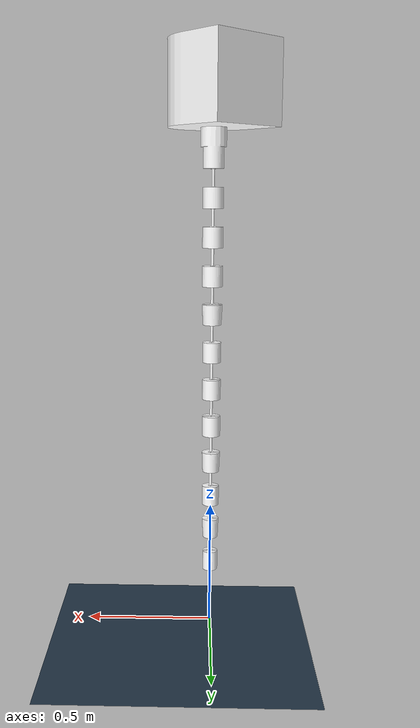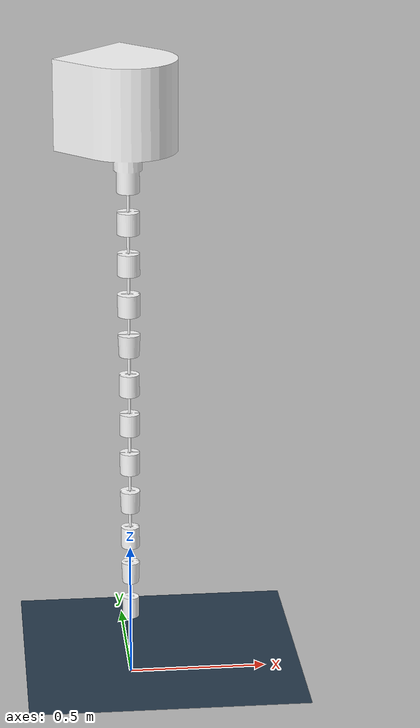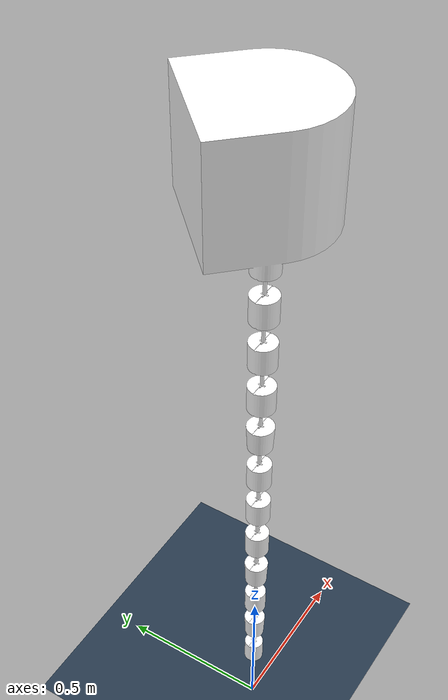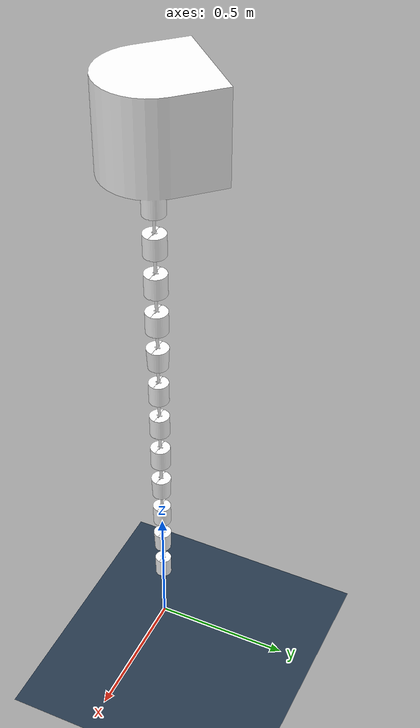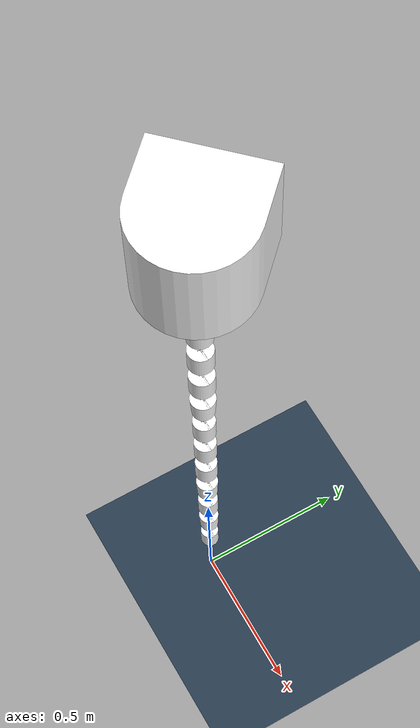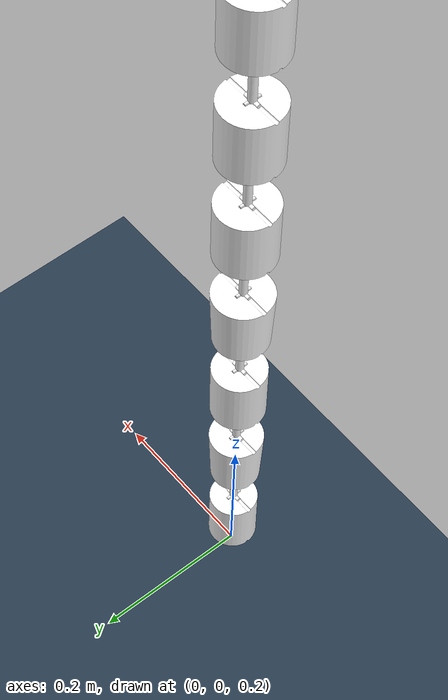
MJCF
<mujoco model="Sup_arm scene">
  <include file="sup_arm.xml"/>

  <statistic center="0.3 0 0.4" extent="0.8" meansize="0.08"/>

  <visual>
    <headlight diffuse="0.6 0.6 0.6" ambient="0.1 0.1 0.1" specular="0 0 0"/>
    <global azimuth="120" elevation="-20"/>
  </visual>

  <asset>
    <texture name="grid" type="2d" builtin="checker" rgb1=".2 .3 .4" rgb2=".1 0.15 0.2" width="512" height="512"
      mark="cross" markrgb=".8 .8 .8"/>
    <material name="grid" texture="grid" texrepeat="1 1" texuniform="true"/>
  </asset>

  <worldbody>
    <light pos="0 0 1.5" directional="true"/>
    <geom name="floor" size="100 100 0.01" type="plane" material="grid"/>
  </worldbody>
</mujoco>

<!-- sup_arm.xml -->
<mujoco model="sup_arm">
  <compiler angle="radian" meshdir="./visual/"/>
  <option gravity="0 0 -9.81" integrator = "implicitfast"/>

  <asset>
    <mesh name="base_link" file="base_link.STL"/>
    <mesh name="seg1_joint1_1" file="seg1_joint1_1.STL"/>
    <mesh name="seg1_joint1_2" file="seg1_joint1_2.STL"/>
    <mesh name="seg1_joint1_3" file="seg1_joint1_3.STL"/>
    <mesh name="seg1_link1" file="seg1_link1.STL"/>
    <mesh name="seg1_joint2_1" file="seg1_joint2_1.STL"/>
    <mesh name="seg1_joint2_2" file="seg1_joint2_2.STL"/>
    <mesh name="seg1_joint2_3" file="seg1_joint2_3.STL"/>
    <mesh name="seg1_link2" file="seg1_link2.STL"/>
    <mesh name="seg1_joint3_1" file="seg1_joint3_1.STL"/>
    <mesh name="seg1_joint3_2" file="seg1_joint3_2.STL"/>
    <mesh name="seg1_joint3_3" file="seg1_joint3_3.STL"/>
    <mesh name="seg1_link3" file="seg1_link3.STL"/>
    <mesh name="seg1_joint4_1" file="seg1_joint4_1.STL"/>
    <mesh name="seg1_joint4_2" file="seg1_joint4_2.STL"/>
    <mesh name="seg1_joint4_3" file="seg1_joint4_3.STL"/>
    <mesh name="seg1_link4" file="seg1_link4.STL"/>
    <mesh name="seg2_joint1_1" file="seg2_joint1_1.STL"/>
    <mesh name="seg2_joint1_2" file="seg2_joint1_2.STL"/>
    <mesh name="seg2_joint1_3" file="seg2_joint1_3.STL"/>
    <mesh name="seg2_link1" file="seg2_link1.STL"/>
    <mesh name="seg2_joint2_1" file="seg2_joint2_1.STL"/>
    <mesh name="seg2_joint2_2" file="seg2_joint2_2.STL"/>
    <mesh name="seg2_joint2_3" file="seg2_joint2_3.STL"/>
    <mesh name="seg2_link2" file="seg2_link2.STL"/>
    <mesh name="seg2_joint3_1" file="seg2_joint3_1.STL"/>
    <mesh name="seg2_joint3_2" file="seg2_joint3_2.STL"/>
    <mesh name="seg2_joint3_3" file="seg2_joint3_3.STL"/>
    <mesh name="seg2_link3" file="seg2_link3.STL"/>
    <mesh name="seg2_joint4_1" file="seg2_joint4_1.STL"/>
    <mesh name="seg2_joint4_2" file="seg2_joint4_2.STL"/>
    <mesh name="seg2_joint4_3" file="seg2_joint4_3.STL"/>
    <mesh name="seg2_link4" file="seg2_link4.STL"/>
    <mesh name="seg3_joint1_1" file="seg3_joint1_1.STL"/>
    <mesh name="seg3_joint1_2" file="seg3_joint1_2.STL"/>
    <mesh name="seg3_joint1_3" file="seg3_joint1_3.STL"/>
    <mesh name="seg3_link1" file="seg3_link1.STL"/>
    <mesh name="seg3_joint2_1" file="seg3_joint2_1.STL"/>
    <mesh name="seg3_joint2_2" file="seg3_joint2_2.STL"/>
    <mesh name="seg3_joint2_3" file="seg3_joint2_3.STL"/>
    <mesh name="seg3_link2" file="seg3_link2.STL"/>
    <mesh name="seg4_joint1_1" file="seg4_joint1_1.STL"/>
    <mesh name="seg4_joint1_2" file="seg4_joint1_2.STL"/>
    <mesh name="seg4_joint1_3" file="seg4_joint1_3.STL"/>
    <mesh name="seg4_link4" file="seg4_link4.STL"/>
  </asset>

  <worldbody>
    <body name="xMatePro3_base" pos = "0 0 2.0" euler = "3.1415 0 0">
      <geom type="mesh" rgba="1 1 1 1" mesh="base_link" contype="0" conaffinity="0"/>
      <body name="seg1_joint1_1" pos="0 0 0.152" quat="0.499998 0.5 0.500002 0.5">
        <inertial pos="2.3799e-08 1.34292e-09 4.6099e-09" quat="0.707107 0 0 0.707107" mass="0.586751" diaginertia="2.21709e-05 1.40956e-05 9.70257e-06"/>
        <joint name="seg1_x1" pos="0 0 0" axis="0 0 1" range="-1.57 1.57"/>
        <geom type="mesh" rgba="1 1 1 1" mesh="seg1_joint1_1" contype="0" conaffinity="0"/>
        <body name="seg1_joint1_2" quat="0.499998 0.5 0.500002 0.5">
          <inertial pos="0.035 0 2.77791e-09" quat="0 0.707107 0 0.707107" mass="0.537451" diaginertia="2.13552e-04 2.13465e-04 6.76142e-06"/>
          <joint name="seg1_y1" pos="0 0 0" axis="0 0 1" range="-1.57 1.57"/>
          <geom type="mesh" rgba="1 1 1 1" mesh="seg1_joint1_2" contype="0" conaffinity="0"/>
          <body name="seg1_joint1_3" pos="0.07 0 0" quat="0.499998 0.5 0.5 -0.500002">
            <inertial pos="2.3799e-08 1.34292e-09 4.6099e-09" quat="0.707107 0 0 0.707107" mass="0.586751" diaginertia="2.21709e-05 1.40956e-05 9.70257e-06"/>
            <joint name="seg1_x2" pos="0 0 0" axis="0 0 -1" range="-1.57 1.57"/>
            <geom type="mesh" rgba="1 1 1 1" mesh="seg1_joint1_3" contype="0" conaffinity="0"/>
            <body name="seg1_link1" quat="0.499998 0.5 0.500002 0.5">
              <inertial pos="0.04 0 0" quat="0.5 0.5 0.5 0.5" mass="0.400553" diaginertia="0.000372931 0.000372097 0.00032086"/>
              <joint name="seg1_y2" pos="0 0 0" axis="0 0 -1" range="-1.57 1.57"/>
              <geom type="mesh" rgba="1 1 1 1" mesh="seg1_link1" contype="0" conaffinity="0"/>
              <body name="seg1_joint2_1" pos="0.08 0 0" quat="0.499998 0.5 0.5 -0.500002">
                <inertial pos="2.3799e-08 1.34292e-09 4.6099e-09" quat="0.707107 0 0 0.707107" mass="0.586751" diaginertia="2.21709e-05 1.40956e-05 9.70257e-06"/>
                <joint name="seg1_x3" pos="0 0 0" axis="0 0 1" range="-1.57 1.57"/>
                <geom type="mesh" rgba="1 1 1 1" mesh="seg1_joint2_1" contype="0" conaffinity="0"/>
                <body name="seg1_joint2_2" quat="0.499998 0.5 0.500002 0.5">
                  <inertial pos="0.035 0 2.77791e-09" quat="0 0.707107 0 0.707107" mass="0.537451" diaginertia="2.13552e-04 2.13465e-04 6.76142e-06"/>
                  <joint name="seg1_y3" pos="0 0 0" axis="0 0 1" range="-1.57 1.57"/>
                  <geom type="mesh" rgba="1 1 1 1" mesh="seg1_joint2_2" contype="0" conaffinity="0"/>
                  <body name="seg1_joint2_3" pos="0.07 0 0" quat="0.499998 0.5 0.5 -0.500002">
                    <inertial pos="2.3799e-08 1.34292e-09 4.6099e-09" quat="0.707107 0 0 0.707107" mass="0.586751" diaginertia="2.21709e-05 1.40956e-05 9.70257e-06"/>
                    <joint name="seg1_x4" pos="0 0 0" axis="0 0 -1" range="-1.57 1.57"/>
                    <geom type="mesh" rgba="1 1 1 1" mesh="seg1_joint2_3" contype="0" conaffinity="0"/>
                    <body name="seg1_link2" quat="0.499998 0.5 0.500002 0.5">
                      <inertial pos="0.04 0 0" quat="0.5 0.5 0.5 0.5" mass="0.400553" diaginertia="0.000372931 0.000372097 0.00032086"/>
                      <joint name="seg1_y4" pos="0 0 0" axis="0 0 -1" range="-1.57 1.57"/>
                      <geom type="mesh" rgba="1 1 1 1" mesh="seg1_link2" contype="0" conaffinity="0"/>
                      <body name="seg1_joint3_1" pos="0.08 0 0" quat="0.499998 0.5 0.5 -0.500002">
                        <inertial pos="2.3799e-08 1.34292e-09 4.6099e-09" quat="0.707107 0 0 0.707107" mass="0.586751" diaginertia="2.21709e-05 1.40956e-05 9.70257e-06"/>
                        <joint name="seg1_x5" pos="0 0 0" axis="0 0 1" range="-1.57 1.57"/>
                        <geom type="mesh" rgba="1 1 1 1" mesh="seg1_joint3_1" contype="0" conaffinity="0"/>
                        <body name="seg1_joint3_2" quat="0.499998 0.5 0.500002 0.5">
                          <inertial pos="0.035 0 2.77791e-09" quat="0 0.707107 0 0.707107" mass="0.537451" diaginertia="2.13552e-04 2.13465e-04 6.76142e-06"/>
                          <joint name="seg1_y5" pos="0 0 0" axis="0 0 1" range="-1.57 1.57"/>
                          <geom type="mesh" rgba="1 1 1 1" mesh="seg1_joint3_2" contype="0" conaffinity="0"/>
                          <body name="seg1_joint3_3" pos="0.07 0 0" quat="0.499998 0.5 0.5 -0.500002">
                            <inertial pos="2.3799e-08 1.34292e-09 4.6099e-09" quat="0.707107 0 0 0.707107" mass="0.586751" diaginertia="2.21709e-05 1.40956e-05 9.70257e-06"/>
                            <joint name="seg1_x6" pos="0 0 0" axis="0 0 -1" range="-1.57 1.57"/>
                            <geom type="mesh" rgba="1 1 1 1" mesh="seg1_joint3_3" contype="0" conaffinity="0"/>
                            <body name="seg1_link3" quat="0.499998 0.5 0.500002 0.5">
                              <inertial pos="0.04 0 0" quat="0.5 0.5 0.5 0.5" mass="0.400553" diaginertia="0.000372931 0.000372097 0.00032086"/>
                              <joint name="seg1_y6" pos="0 0 0" axis="0 0 -1" range="-1.57 1.57"/>
                              <geom type="mesh" rgba="1 1 1 1" mesh="seg1_link3" contype="0" conaffinity="0"/>
                              <body name="seg1_joint4_1" pos="0.08 0 0" quat="0.499998 0.5 0.5 -0.500002">
                                <inertial pos="2.3799e-08 1.34292e-09 4.6099e-09" quat="0.707107 0 0 0.707107" mass="0.586751" diaginertia="2.21709e-05 1.40956e-05 9.70257e-06"/>
                                <joint name="seg1_x7" pos="0 0 0" axis="0 0 1" range="-1.57 1.57"/>
                                <geom type="mesh" rgba="1 1 1 1" mesh="seg1_joint4_1" contype="0" conaffinity="0"/>
                                <body name="seg1_joint4_2" quat="0.499998 0.5 0.500002 0.5">
                                  <inertial pos="0.035 0 2.77791e-09" quat="0 0.707107 0 0.707107" mass="0.537451" diaginertia="2.13552e-04 2.13465e-04 6.76142e-06"/>
                                  <joint name="seg1_y7" pos="0 0 0" axis="0 0 1" range="-1.57 1.57"/>
                                  <geom type="mesh" rgba="1 1 1 1" mesh="seg1_joint4_2" contype="0" conaffinity="0"/>
                                  <body name="seg1_joint4_3" pos="0.07 0 0" quat="0.499998 0.5 0.5 -0.500002">
                                    <inertial pos="2.3799e-08 1.34292e-09 4.6099e-09" quat="0.707107 0 0 0.707107" mass="0.586751" diaginertia="2.21709e-05 1.40956e-05 9.70257e-06"/>
                                    <joint name="seg1_x8" pos="0 0 0" axis="0 0 -1" range="-1.57 1.57"/>
                                    <geom type="mesh" rgba="1 1 1 1" mesh="seg1_joint4_3" contype="0" conaffinity="0"/>
                                    <body name="seg1_link4" quat="0.499998 0.5 0.500002 0.5">
                                      <inertial pos="0.0386002 0 -4.50592e-10" quat="0.5 0.5 0.5 0.5" mass="0.36176" diaginertia="0.000322642 0.000321922 0.000262753"/>
                                      <joint name="seg1_y8" pos="0 0 0" axis="0 0 -1" range="-1.57 1.57"/>
                                      <geom type="mesh" rgba="1 1 1 1" mesh="seg1_link4" contype="0" conaffinity="0"/>
                                      <body name="seg2_joint1_1" pos="0.08 0 0" quat="0.499998 0.5 0.5 -0.500002">
                                        <inertial pos="2.3799e-08 1.34292e-09 4.6099e-09" quat="0.707107 0 0 0.707107" mass="0.586751" diaginertia="2.21709e-05 1.40956e-05 9.70257e-06"/>
                                        <joint name="seg2_x1" pos="0 0 0" axis="0 0 1" range="-1.57 1.57"/>
                                        <geom type="mesh" rgba="1 1 1 1" mesh="seg2_joint1_1" contype="0" conaffinity="0"/>
                                        <body name="seg2_joint1_2" quat="0.499998 0.5 0.500002 0.5">
                                          <inertial pos="0.035 0 2.77791e-09" quat="0 0.707107 0 0.707107" mass="0.537451" diaginertia="2.13552e-04 2.13465e-04 6.76142e-06"/>
                                          <joint name="seg2_y1" pos="0 0 0" axis="0 0 1" range="-1.57 1.57"/>
                                          <geom type="mesh" rgba="1 1 1 1" mesh="seg2_joint1_2" contype="0" conaffinity="0"/>
                                          <body name="seg2_joint1_3" pos="0.07 0 0" quat="0.499998 0.5 0.5 -0.500002">
                                            <inertial pos="2.3799e-08 1.34292e-09 4.6099e-09" quat="0.707107 0 0 0.707107" mass="0.586751" diaginertia="2.21709e-05 1.40956e-05 9.70257e-06"/>
                                            <joint name="seg2_x2" pos="0 0 0" axis="0 0 -1" range="-1.57 1.57"/>
                                            <geom type="mesh" rgba="1 1 1 1" mesh="seg2_joint1_3" contype="0" conaffinity="0"/>
                                            <body name="seg2_link1" quat="0.499998 0.5 0.500002 0.5">
                                              <inertial pos="0.04 0 0" quat="0.5 0.5 0.5 0.5" mass="0.324307" diaginertia="0.000277105 0.000276498 0.000210455"/>
                                              <joint name="seg2_y2" pos="0 0 0" axis="0 0 -1" range="-1.57 1.57"/>
                                              <geom type="mesh" rgba="1 1 1 1" mesh="seg2_link1" contype="0" conaffinity="0"/>
                                              <body name="seg2_joint2_1" pos="0.08 0 0" quat="0.499998 0.5 0.5 -0.500002">
                                                <inertial pos="2.3799e-08 1.34292e-09 4.6099e-09" quat="0.707107 0 0 0.707107" mass="0.586751" diaginertia="2.21709e-05 1.40956e-05 9.70257e-06"/>
                                                <joint name="seg2_x3" pos="0 0 0" axis="0 0 1" range="-1.57 1.57"/>
                                                <geom type="mesh" rgba="1 1 1 1" mesh="seg2_joint2_1" contype="0" conaffinity="0"/>
                                                <body name="seg2_joint2_2" quat="0.499998 0.5 0.500002 0.5">
                                                  <inertial pos="0.035 0 2.77791e-09" quat="0 0.707107 0 0.707107" mass="0.537451" diaginertia="2.13552e-04 2.13465e-04 6.76142e-06"/>
                                                  <joint name="seg2_y3" pos="0 0 0" axis="0 0 1" range="-1.57 1.57"/>
                                                  <geom type="mesh" rgba="1 1 1 1" mesh="seg2_joint2_2" contype="0" conaffinity="0"/>
                                                  <body name="seg2_joint2_3" pos="0.07 0 0" quat="0.499998 0.5 0.5 -0.500002">
                                                    <inertial pos="2.3799e-08 1.34292e-09 4.6099e-09" quat="0.707107 0 0 0.707107" mass="0.586751" diaginertia="2.21709e-05 1.40956e-05 9.70257e-06"/>
                                                    <joint name="seg2_x4" pos="0 0 0" axis="0 0 -1" range="-1.57 1.57"/>
                                                    <geom type="mesh" rgba="1 1 1 1" mesh="seg2_joint2_3" contype="0" conaffinity="0"/>
                                                    <body name="seg2_link2" quat="0.499998 0.5 0.500002 0.5">
                                                      <inertial pos="0.04 0 0" quat="0.5 0.5 0.5 0.5" mass="0.324307" diaginertia="0.000277105 0.000276498 0.000210455"/>
                                                      <joint name="seg2_y4" pos="0 0 0" axis="0 0 -1" range="-1.57 1.57"/>
                                                      <geom type="mesh" rgba="1 1 1 1" mesh="seg2_link2" contype="0" conaffinity="0"/>
                                                      <body name="seg2_joint3_1" pos="0.08 0 0" quat="0.499998 0.5 0.5 -0.500002">
                                                        <inertial pos="2.3799e-08 1.34292e-09 4.6099e-09" quat="0.707107 0 0 0.707107" mass="0.586751" diaginertia="2.21709e-05 1.40956e-05 9.70257e-06"/>
                                                        <joint name="seg2_x5" pos="0 0 0" axis="0 0 1" range="-1.57 1.57"/>
                                                        <geom type="mesh" rgba="1 1 1 1" mesh="seg2_joint3_1" contype="0" conaffinity="0"/>
                                                        <body name="seg2_joint3_2" quat="0.499998 0.5 0.500002 0.5">
                                                          <inertial pos="0.035 0 2.77791e-09" quat="0 0.707107 0 0.707107" mass="0.537451" diaginertia="2.13552e-04 2.13465e-04 6.76142e-06"/>
                                                          <joint name="seg2_y5" pos="0 0 0" axis="0 0 1" range="-1.57 1.57"/>
                                                          <geom type="mesh" rgba="1 1 1 1" mesh="seg2_joint3_2" contype="0" conaffinity="0"/>
                                                          <body name="seg2_joint3_3" pos="0.07 0 0" quat="0.499998 0.5 0.5 -0.500002">
                                                            <inertial pos="2.3799e-08 1.34292e-09 4.6099e-09" quat="0.707107 0 0 0.707107" mass="0.586751" diaginertia="2.21709e-05 1.40956e-05 9.70257e-06"/>
                                                            <joint name="seg2_x6" pos="0 0 0" axis="0 0 -1" range="-1.57 1.57"/>
                                                            <geom type="mesh" rgba="1 1 1 1" mesh="seg2_joint3_3" contype="0" conaffinity="0"/>
                                                            <body name="seg2_link3" quat="0.499998 0.5 0.500002 0.5">
                                                              <inertial pos="0.04 0 0" quat="0.5 0.5 0.5 0.5" mass="0.324307" diaginertia="0.000277105 0.000276498 0.000210455"/>
                                                              <joint name="seg2_y6" pos="0 0 0" axis="0 0 -1" range="-1.57 1.57"/>
                                                              <geom type="mesh" rgba="1 1 1 1" mesh="seg2_link3" contype="0" conaffinity="0"/>
                                                              <body name="seg2_joint4_1" pos="0.08 0 0" quat="0.499998 0.5 0.5 -0.500002">
                                                                <inertial pos="2.3799e-08 1.34292e-09 4.6099e-09" quat="0.707107 0 0 0.707107" mass="0.586751" diaginertia="2.21709e-05 1.40956e-05 9.70257e-06"/>
                                                                <joint name="seg2_x7" pos="0 0 0" axis="0 0 1" range="-1.57 1.57"/>
                                                                <geom type="mesh" rgba="1 1 1 1" mesh="seg2_joint4_1" contype="0" conaffinity="0"/>
                                                                <body name="seg2_joint4_2" quat="0.499998 0.5 0.500002 0.5">
                                                                  <inertial pos="0.035 0 2.77791e-09" quat="0 0.707107 0 0.707107" mass="0.537451" diaginertia="2.13552e-04 2.13465e-04 6.76142e-06"/>
                                                                  <joint name="seg2_y7" pos="0 0 0" axis="0 0 1" range="-1.57 1.57"/>
                                                                  <geom type="mesh" rgba="1 1 1 1" mesh="seg2_joint4_2" contype="0" conaffinity="0"/>
                                                                  <body name="seg2_joint4_3" pos="0.07 0 0" quat="0.499998 0.5 0.5 -0.500002">
                                                                    <inertial pos="2.3799e-08 1.34292e-09 4.6099e-09" quat="0.707107 0 0 0.707107" mass="0.586751" diaginertia="2.21709e-05 1.40956e-05 9.70257e-06"/>
                                                                    <joint name="seg2_x8" pos="0 0 0" axis="0 0 -1" range="-1.57 1.57"/>
                                                                    <geom type="mesh" rgba="1 1 1 1" mesh="seg2_joint4_3" contype="0" conaffinity="0"/>
                                                                    <body name="seg2_link4" quat="0.499998 0.5 0.500002 0.5">
                                                                      <inertial pos="0.0388435 0 -4.8497e-10" quat="0.5 0.5 0.5 0.5" mass="0.297976" diaginertia="0.000246619 0.000246082 0.000178159"/>
                                                                      <joint name="seg2_y8" pos="0 0 0" axis="0 0 -1" range="-1.57 1.57"/>
                                                                      <geom type="mesh" rgba="1 1 1 1" mesh="seg2_link4" contype="0" conaffinity="0"/>
                                                                      <body name="seg3_joint1_1" pos="0.08 0 0" quat="0.499998 0.5 0.5 -0.500002">
                                                                        <inertial pos="2.3799e-08 1.34292e-09 4.6099e-09" quat="0.707107 0 0 0.707107" mass="0.586751" diaginertia="2.21709e-05 1.40956e-05 9.70257e-06"/>
                                                                        <joint name="seg3_x1" pos="0 0 0" axis="0 0 1" range="-1.57 1.57"/>
                                                                        <geom type="mesh" rgba="1 1 1 1" mesh="seg3_joint1_1" contype="0" conaffinity="0"/>
                                                                        <body name="seg3_joint1_2" quat="0.499998 0.5 0.500002 0.5">
                                                                          <inertial pos="0.031 0 2.79655e-09" quat="0 0.707107 0 0.707107" mass="0.474622" diaginertia="1.4782e-04 1.47733e-04 5.97605e-06"/>
                                                                          <joint name="seg3_y1" pos="0 0 0" axis="0 0 1" range="-1.57 1.57"/>
                                                                          <geom type="mesh" rgba="1 1 1 1" mesh="seg3_joint1_2" contype="0" conaffinity="0"/>
                                                                          <body name="seg3_joint1_3" pos="0.062 0 0" quat="0.499998 0.5 0.5 -0.500002">
                                                                            <inertial pos="2.3799e-08 1.34292e-09 4.6099e-09" quat="0.707107 0 0 0.707107" mass="0.586751" diaginertia="2.21709e-05 1.40956e-05 9.70257e-06"/>
                                                                            <joint name="seg3_x2" pos="0 0 0" axis="0 0 -1" range="-1.57 1.57"/>
                                                                            <geom type="mesh" rgba="1 1 1 1" mesh="seg3_joint1_3" contype="0" conaffinity="0"/>
                                                                            <body name="seg3_link1" quat="0.499998 0.5 0.500002 0.5">
                                                                              <inertial pos="0.039 0 0" quat="0.5 0.5 0.5 0.5" mass="0.265557" diaginertia="0.000206078 0.000205611 0.00014483"/>
                                                                              <joint name="seg3_y2" pos="0 0 0" axis="0 0 -1" range="-1.57 1.57"/>
                                                                              <geom type="mesh" rgba="1 1 1 1" mesh="seg3_link1" contype="0" conaffinity="0"/>
                                                                              <body name="seg3_joint2_1" pos="0.078 0 0" quat="0.499998 0.5 0.5 -0.500002">
                                                                                <inertial pos="2.3799e-08 1.34292e-09 4.6099e-09" quat="0.707107 0 0 0.707107" mass="0.586751" diaginertia="2.21709e-05 1.40956e-05 9.70257e-06"/>
                                                                                <joint name="seg3_x3" pos="0 0 0" axis="0 0 1" range="-1.57 1.57"/>
                                                                                <geom type="mesh" rgba="1 1 1 1" mesh="seg3_joint2_1" contype="0" conaffinity="0"/>
                                                                                <body name="seg3_joint2_2" quat="0.499998 0.5 0.500002 0.5">
                                                                                  <inertial pos="0.031 0 2.79655e-09" quat="0 0.707107 0 0.707107" mass="0.474622" diaginertia="1.4782e-04 1.47733e-04 5.97605e-06"/>
                                                                                  <joint name="seg3_y3" pos="0 0 0" axis="0 0 1" range="-1.57 1.57"/>
                                                                                  <geom type="mesh" rgba="1 1 1 1" mesh="seg3_joint2_2" contype="0" conaffinity="0"/>
                                                                                  <body name="seg3_joint2_3" pos="0.062 0 0" quat="0.499998 0.5 0.5 -0.500002">
                                                                                    <inertial pos="2.3799e-08 1.34292e-09 4.6099e-09" quat="0.707107 0 0 0.707107" mass="0.586751" diaginertia="2.21709e-05 1.40956e-05 9.70257e-06"/>
                                                                                    <joint name="seg3_x4" pos="0 0 0" axis="0 0 -1" range="-1.57 1.57"/>
                                                                                    <geom type="mesh" rgba="1 1 1 1" mesh="seg3_joint2_3" contype="0" conaffinity="0"/>
                                                                                    <body name="seg3_link2" quat="0.499998 0.5 0.500002 0.5">
                                                                                      <inertial pos="0.0377655 0 -5.40651e-10" quat="0.5 0.5 0.5 0.5" mass="0.242092" diaginertia="0.00018188 0.000181471 0.000120765"/>
                                                                                      <joint name="seg3_y4" pos="0 0 0" axis="0 0 -1" range="-1.57 1.57"/>
                                                                                      <geom type="mesh" rgba="1 1 1 1" mesh="seg3_link2" contype="0" conaffinity="0"/>
                                                                                      <body name="seg4_joint1_1" pos="0.078 0 0" quat="0.499998 0.5 0.5 -0.500002">
                                                                                        <inertial pos="2.3799e-08 1.34292e-09 4.6099e-09" quat="0.707107 0 0 0.707107" mass="0.586751" diaginertia="2.21709e-05 1.40956e-05 9.70257e-06"/>
                                                                                        <joint name="seg4_x1" pos="0 0 0" axis="0 0 1" range="-1.57 1.57"/>
                                                                                        <geom type="mesh" rgba="1 1 1 1" mesh="seg4_joint1_1" contype="0" conaffinity="0"/>
                                                                                        <body name="seg4_joint1_2" quat="0.499998 0.5 0.500002 0.5">
                                                                                          <inertial pos="0.031 0 2.79655e-09" quat="0 0.707107 0 0.707107" mass="0.474622" diaginertia="1.4782e-04 1.47733e-04 5.97605e-06"/>
                                                                                          <joint name="seg4_y1" pos="0 0 0" axis="0 0 1" range="-1.57 1.57"/>
                                                                                          <geom type="mesh" rgba="1 1 1 1" mesh="seg4_joint1_2" contype="0" conaffinity="0"/>
                                                                                          <body name="seg4_joint1_3" pos="0.062 0 0" quat="0.499998 0.5 0.5 -0.500002">
                                                                                            <inertial pos="2.3799e-08 1.34292e-09 4.6099e-09" quat="0.707107 0 0 0.707107" mass="0.586751" diaginertia="2.21709e-05 1.40956e-05 9.70257e-06"/>
                                                                                            <joint name="seg4_x2" pos="0 0 0" axis="0 0 -1" range="-1.57 1.57"/>
                                                                                            <geom type="mesh" rgba="1 1 1 1" mesh="seg4_joint1_3" contype="0" conaffinity="0"/>
                                                                                            <body name="seg4_link4" quat="0.499998 0.5 0.500002 0.5">
                                                                                              <inertial pos="0.039 0 0" quat="0.5 0.5 0.5 0.5" mass="0.219362" diaginertia="0.000159738 0.000159387 9.88885e-05"/>
                                                                                              <joint name="seg4_y2" pos="0 0 0" axis="0 0 -1" range="-1.57 1.57"/>
                                                                                              <geom type="mesh" rgba="1 1 1 1" mesh="seg4_link4" contype="0" conaffinity="0"/>
                                                                                            </body>
                                                                                          </body>
                                                                                        </body>
                                                                                      </body>
                                                                                    </body>
                                                                                  </body>
                                                                                </body>
                                                                              </body>
                                                                            </body>
                                                                          </body>
                                                                        </body>
                                                                      </body>
                                                                    </body>
                                                                  </body>
                                                                </body>
                                                              </body>
                                                            </body>
                                                          </body>
                                                        </body>
                                                      </body>
                                                    </body>
                                                  </body>
                                                </body>
                                              </body>
                                            </body>
                                          </body>
                                        </body>
                                      </body>
                                    </body>
                                  </body>
                                </body>
                              </body>
                            </body>
                          </body>
                        </body>
                      </body>
                    </body>
                  </body>
                </body>
              </body>
            </body>
          </body>
        </body>
      </body>
    </body>
  </worldbody>

  <actuator>
      <position name="seg1_x1" ctrllimited = "true" ctrlrange="-1.57 1.57" joint="seg1_x1" kp="2000" kv="200"/>
      <position name="seg1_y1" ctrllimited = "true" ctrlrange="-1.57 1.57" joint="seg1_y1" kp="2000" kv="200"/>
      <position name="seg1_x2" ctrllimited = "true" ctrlrange="-1.57 1.57" joint="seg1_x2" kp="2000" kv="200"/>
      <position name="seg1_y2" ctrllimited = "true" ctrlrange="-1.57 1.57" joint="seg1_y2" kp="2000" kv="200"/>
      <position name="seg1_x3" ctrllimited = "true" ctrlrange="-1.57 1.57" joint="seg1_x3" kp="2000" kv="200"/>
      <position name="seg1_y3" ctrllimited = "true" ctrlrange="-1.57 1.57" joint="seg1_y3" kp="2000" kv="200"/>
      <position name="seg1_x4" ctrllimited = "true" ctrlrange="-1.57 1.57" joint="seg1_x4" kp="2000" kv="200"/>
      <position name="seg1_y4" ctrllimited = "true" ctrlrange="-1.57 1.57" joint="seg1_y4" kp="2000" kv="200"/>
      <position name="seg1_x5" ctrllimited = "true" ctrlrange="-1.57 1.57" joint="seg1_x5" kp="2000" kv="200"/>
      <position name="seg1_y5" ctrllimited = "true" ctrlrange="-1.57 1.57" joint="seg1_y5" kp="2000" kv="200"/>
      <position name="seg1_x6" ctrllimited = "true" ctrlrange="-1.57 1.57" joint="seg1_x6" kp="2000" kv="200"/>
      <position name="seg1_y6" ctrllimited = "true" ctrlrange="-1.57 1.57" joint="seg1_y6" kp="2000" kv="200"/>
      <position name="seg1_x7" ctrllimited = "true" ctrlrange="-1.57 1.57" joint="seg1_x7" kp="2000" kv="200"/>
      <position name="seg1_y7" ctrllimited = "true" ctrlrange="-1.57 1.57" joint="seg1_y7" kp="2000" kv="200"/>
      <position name="seg1_x8" ctrllimited = "true" ctrlrange="-1.57 1.57" joint="seg1_x8" kp="2000" kv="200"/>
      <position name="seg1_y8" ctrllimited = "true" ctrlrange="-1.57 1.57" joint="seg1_y8" kp="2000" kv="200"/>
      <position name="seg2_x1" ctrllimited = "true" ctrlrange="-1.57 1.57" joint="seg2_x1" kp="2000" kv="200"/>
      <position name="seg2_y1" ctrllimited = "true" ctrlrange="-1.57 1.57" joint="seg2_y1" kp="2000" kv="200"/>
      <position name="seg2_x2" ctrllimited = "true" ctrlrange="-1.57 1.57" joint="seg2_x2" kp="2000" kv="200"/>
      <position name="seg2_y2" ctrllimited = "true" ctrlrange="-1.57 1.57" joint="seg2_y2" kp="2000" kv="200"/>
      <position name="seg2_x3" ctrllimited = "true" ctrlrange="-1.57 1.57" joint="seg2_x3" kp="2000" kv="200"/>
      <position name="seg2_y3" ctrllimited = "true" ctrlrange="-1.57 1.57" joint="seg2_y3" kp="2000" kv="200"/>
      <position name="seg2_x4" ctrllimited = "true" ctrlrange="-1.57 1.57" joint="seg2_x4" kp="2000" kv="200"/>
      <position name="seg2_y4" ctrllimited = "true" ctrlrange="-1.57 1.57" joint="seg2_y4" kp="2000" kv="200"/>
      <position name="seg2_x5" ctrllimited = "true" ctrlrange="-1.57 1.57" joint="seg2_x5" kp="2000" kv="200"/>
      <position name="seg2_y5" ctrllimited = "true" ctrlrange="-1.57 1.57" joint="seg2_y5" kp="2000" kv="200"/>
      <position name="seg2_x6" ctrllimited = "true" ctrlrange="-1.57 1.57" joint="seg2_x6" kp="2000" kv="200"/>
      <position name="seg2_y6" ctrllimited = "true" ctrlrange="-1.57 1.57" joint="seg2_y6" kp="2000" kv="200"/>
      <position name="seg2_x7" ctrllimited = "true" ctrlrange="-1.57 1.57" joint="seg2_x7" kp="2000" kv="200"/>
      <position name="seg2_y7" ctrllimited = "true" ctrlrange="-1.57 1.57" joint="seg2_y7" kp="2000" kv="200"/>
      <position name="seg2_x8" ctrllimited = "true" ctrlrange="-1.57 1.57" joint="seg2_x8" kp="2000" kv="200"/>
      <position name="seg2_y8" ctrllimited = "true" ctrlrange="-1.57 1.57" joint="seg2_y8" kp="2000" kv="200"/>
      <position name="seg3_x1" ctrllimited = "true" ctrlrange="-1.57 1.57" joint="seg3_x1" kp="2000" kv="200"/>
      <position name="seg3_y1" ctrllimited = "true" ctrlrange="-1.57 1.57" joint="seg3_y1" kp="2000" kv="200"/>
      <position name="seg3_x2" ctrllimited = "true" ctrlrange="-1.57 1.57" joint="seg3_x2" kp="2000" kv="200"/>
      <position name="seg3_y2" ctrllimited = "true" ctrlrange="-1.57 1.57" joint="seg3_y2" kp="2000" kv="200"/>
      <position name="seg3_x3" ctrllimited = "true" ctrlrange="-1.57 1.57" joint="seg3_x3" kp="2000" kv="200"/>
      <position name="seg3_y3" ctrllimited = "true" ctrlrange="-1.57 1.57" joint="seg3_y3" kp="2000" kv="200"/>
      <position name="seg3_x4" ctrllimited = "true" ctrlrange="-1.57 1.57" joint="seg3_x4" kp="2000" kv="200"/>
      <position name="seg3_y4" ctrllimited = "true" ctrlrange="-1.57 1.57" joint="seg3_y4" kp="2000" kv="200"/>
      <position name="seg4_x1" ctrllimited = "true" ctrlrange="-1.57 1.57" joint="seg4_x1" kp="2000" kv="200"/>
      <position name="seg4_y1" ctrllimited = "true" ctrlrange="-1.57 1.57" joint="seg4_y1" kp="2000" kv="200"/>
      <position name="seg4_x2" ctrllimited = "true" ctrlrange="-1.57 1.57" joint="seg4_x2" kp="2000" kv="200"/>
      <position name="seg4_y2" ctrllimited = "true" ctrlrange="-1.57 1.57" joint="seg4_y2" kp="2000" kv="200"/>
  </actuator>

</mujoco>
